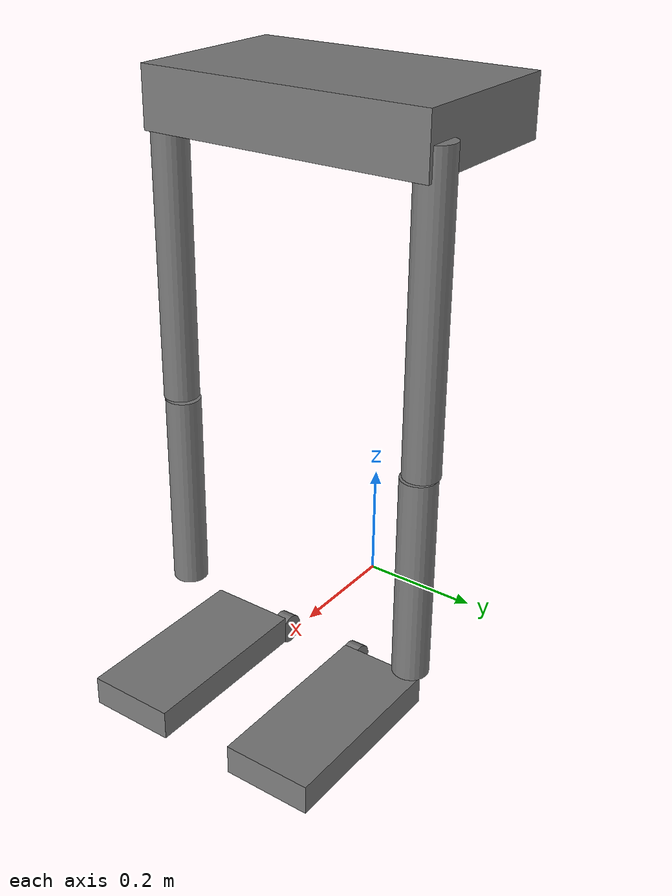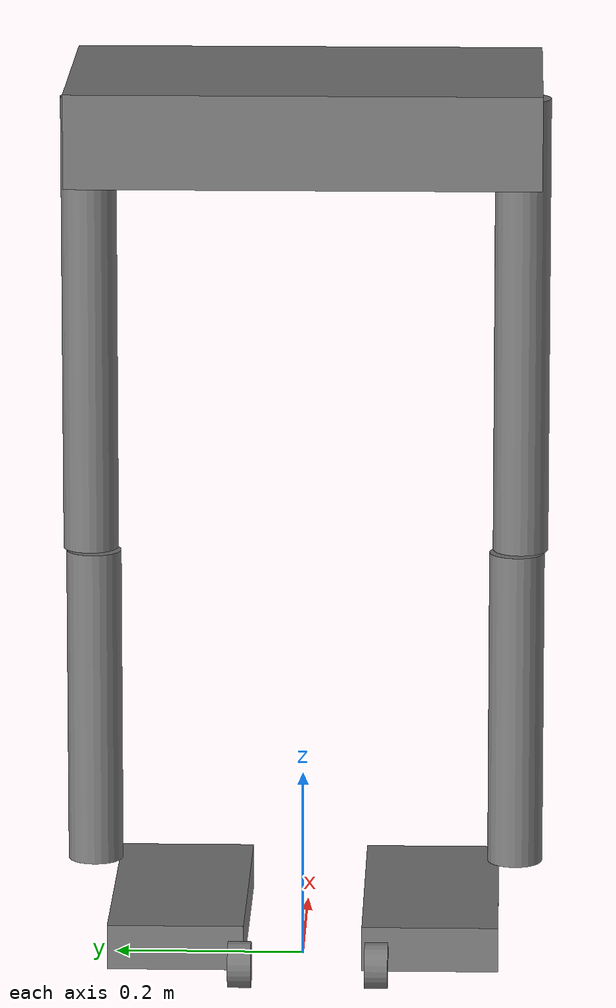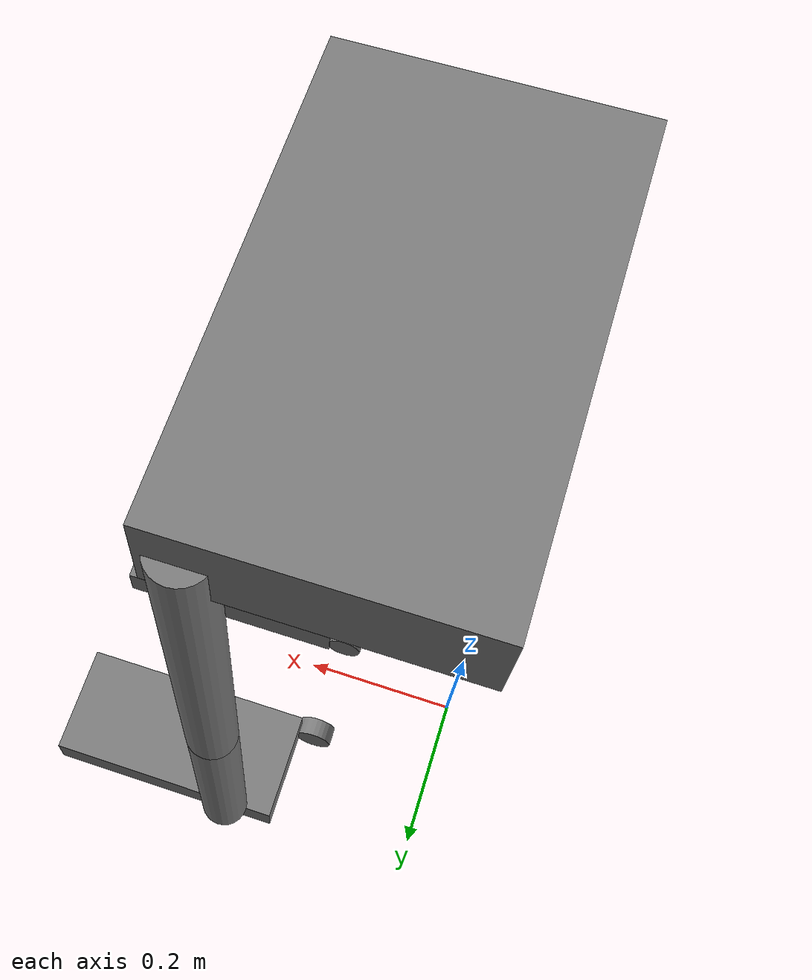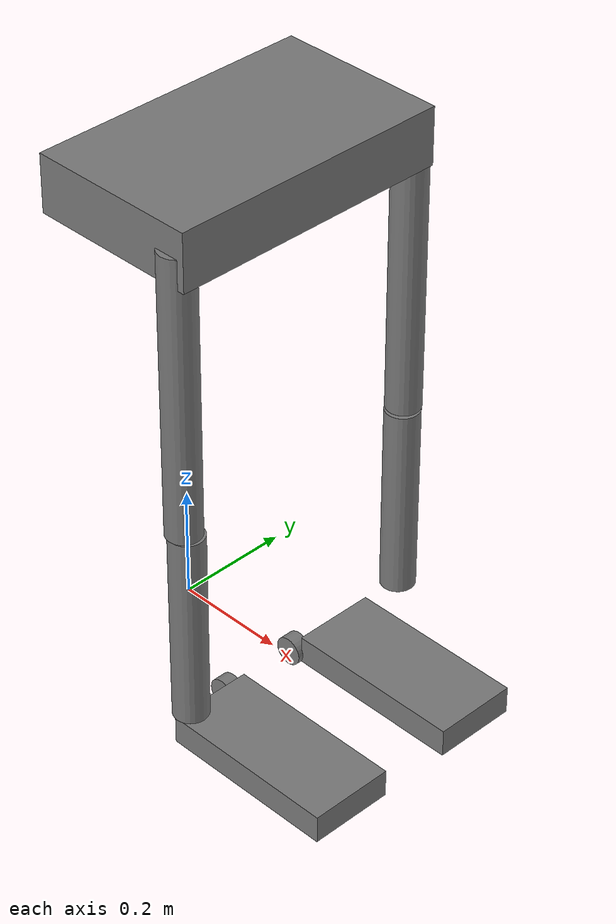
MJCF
<mujoco model="njit_exo">
  <compiler angle="radian" inertiafromgeom="auto"/>

  <option iterations="3" ls_iterations="5" timestep="0.002" integrator="Euler">
    <flag eulerdamp="disable"/>
  </option>

  <default>
    <default class="exo">
      <geom condim="1" contype="0" conaffinity="0"/>
      <site size="0.01" rgba="1 0 0 1" group="4"/>
      <joint damping="1.5"/>
      <position inheritrange="1.0" kp="35"/>
      <default class="hip">
        <joint actuatorfrcrange="-100 100" range="-1.309 1.309" armature="0.01" frictionloss="0.3"/>
      </default>
      <default class="knee">
        <joint actuatorfrcrange="-100 100" range="-2.094 0.0" armature="0.01" frictionloss="0.8"/>
      </default>
      <default class="ankle_pitch">
        <joint actuatorfrcrange="-100 100" range="-0.6981 0.2618" armature="0.01" frictionloss="0.5"/>
      </default>
      <default class="ankle_roll">
        <joint actuatorfrcrange="-100 100" range="-0.2618 0.2618" armature="0.01" frictionloss="0.5"/>
      </default>
      <default class="visual">
        <geom density="0" group="2" rgba="0.478431 0.478431 0.478431 1" contype="0" conaffinity="0"/>
      </default>
      <default class="collision">
        <geom group="3" contype="1" conaffinity="1"/>
      </default>
    </default>
  </default>

  <asset>
    <material name="exo_material" rgba="0.478431 0.478431 0.478431 1"/>
  </asset>

  <worldbody>
    <light name="spotlight" mode="targetbodycom" target="exo_pelvis" pos="3 0 4"/>

    <body name="exo_pelvis" childclass="exo" pos="0 0 0.9" quat="0.707107 0.707107 0 0">
      <freejoint/>
      <site name="imu"/>
      <camera name="front" pos="1.5 -0.5 0.5" xyaxes="0.342 0.940 0.000 -0.321 0.117 0.940" mode="trackcom"/>
      <camera name="track" pos="1.0 -1.5 0.3" xyaxes="0.814 0.580 0.000 -0.140 0.196 0.971" mode="trackcom"/>

      <inertial pos="0.164969 -0.016465 -0.00031201" quat="1 0 0 0" mass="3.40529"
        diaginertia="0.108005 0.140273 0.0409718"/>

      <geom class="visual" type="box" size="0.15 0.05 0.25" pos="0.134969 -0.016465 -0.00031201"/>

      <!-- Battery -->
      <body name="Battery" pos="0 0 0">
        <inertial pos="-0.0292753 0.0823604 -0.00041407" quat="1 0 0 0" mass="2.2"
          diaginertia="0.00909547 0.00798838 0.00423978"/>
      </body>

      <!-- Right Leg -->
      <body name="r_exo_femur" pos="0.25 -0.06 0.21">
        <inertial pos="-0.00012287 -0.205637 0.0391034" quat="1 0 0 0" mass="2.77725"
          diaginertia="0.0378701 0.00419727 0.0353309"/>
        <joint name="r_hip" class="hip" axis="0 0 1"/>
        <geom class="visual" type="cylinder" size="0.03 0.25" pos="-0.00012287 -0.205637 0.0201034" quat="0.707107 0.707107 0 0"/>

        <body name="r_exo_tibia" pos="0 -0.41 0">
          <inertial pos="0.00130324 -0.0640757 0.0163233" quat="1 0 0 0" mass="0.60426"
            diaginertia="0.00549709 0.00033891 0.00532813"/>
          <joint name="r_knee" class="knee" axis="0 0 1"/>
          <geom class="visual" type="cylinder" size="0.03 0.175" pos="0.00130324 -0.2240757 0.0163233" quat="0.707107 0.707107 0 0"/>

          <body name="r_shank_support" pos="0 -0.25 0">
            <inertial pos="-0.0220563 -0.0501763 -0.0332489" quat="1 0 0 0" mass="0.24824"
              diaginertia="0.0009242 0.00070211 0.00054663"/>

            <body name="r_ankle_coupling" pos="0 -0.129 0">
              <inertial pos="0.0270888 -0.0211255 -0.0183098" quat="1 0 0 0" mass="0.194678"
                diaginertia="0.00020434 0.00086131 0.00083139"/>
              <joint name="r_ankle_pitch" class="ankle_pitch" axis="0 0 1"/>
              <geom class="visual" type="cylinder" size="0.0254 0.0127" pos="-0.0784998 -0.1185 -0.135"/>

              <body name="r_foot" pos="0.11 0.001 -0.0699999" quat="0.958225 0 0 0.286109">
                <inertial pos="-0.0647188 -0.0863198 0.00643328" quat="1 0 0 0" mass="1.39879"
                  diaginertia="0.00411567 0.0161809 0.0165848"/>
                <joint name="r_ankle_roll" class="ankle_roll" axis="1 0 0"/>
                <geom class="visual" type="box" size="0.16 0.025 0.075" pos="-0.0647188 -0.0863198 -0.00643328" quat="0.958225 0 0 -0.286109"/>

                <!-- Ground contact geometry -->
                <body name="r_foot_ground" pos="0 -0.135 0" quat="0.958225 0 0 -0.286109">
                  <inertial pos="0 0 0" quat="1 0 0 0" mass="1e-06" diaginertia="1e-06 1e-06 1e-06"/>
                  <geom name="r_foot_contact" class="collision" type="box" size="0.16 0.02 0.07" pos="-0.08 0.02 0.00"/>
                  <site name="r_foot" type="box" size="0.16 0.02 0.07" pos="-0.08 0.02 0.00"/>
                </body>
              </body>
            </body>
          </body>
        </body>
      </body>

      <!-- Left Leg -->
      <body name="l_exo_femur" pos="0.25 -0.06 -0.21">
        <inertial pos="-0.00012287 -0.205637 -0.0391034" quat="1 0 0 0" mass="2.77725"
          diaginertia="0.0378701 0.00419727 0.0353309"/>
        <joint name="l_hip" class="hip" axis="0 0 1"/>
        <geom class="visual" type="cylinder" size="0.03 0.25" pos="-0.00012287 -0.205637 -0.0291034" quat="0.707107 0.707107 0 0"/>

        <body name="l_exo_tibia" pos="0 -0.41 0">
          <inertial pos="0.00130324 -0.0640757 -0.0163233" quat="1 0 0 0" mass="0.60426"
            diaginertia="0.00549709 0.00033891 0.00532813"/>
          <joint name="l_knee" class="knee" axis="0 0 1"/>
          <geom class="visual" type="cylinder" size="0.03 0.175" pos="0.00130324 -0.2240757 -0.0263233" quat="0.707107 0.707107 0 0"/>

          <body name="l_shank_support" pos="0 -0.25 0">
            <inertial pos="-0.0220563 -0.0501763 0.0332489" quat="1 0 0 0" mass="0.24824"
              diaginertia="0.0009242 0.00070211 0.00054663"/>

            <body name="l_ankle_coupling" pos="0 -0.129 0">
              <inertial pos="0.0270888 -0.0211255 0.0183098" quat="1 0 0 0" mass="0.194678"
                diaginertia="0.00020434 0.00086131 0.00083139"/>
              <joint name="l_ankle_pitch" class="ankle_pitch" axis="0 0 1"/>
              <geom class="visual" type="cylinder" size="0.0254 0.0127" pos="-0.0784998 -0.1185 0.135"/>

              <body name="l_foot" pos="0.11 0.001 0.0699999" quat="0.958225 0 0 0.286109">
                <inertial pos="-0.0647188 -0.0863198 -0.00643328" quat="1 0 0 0" mass="1.39879"
                  diaginertia="0.00411567 0.0161809 0.0165848"/>
                <joint name="l_ankle_roll" class="ankle_roll" axis="-1 0 0"/>
                <geom class="visual" type="box" size="0.16 0.025 0.075" pos="-0.0647188 -0.0863198 -0.00643328" quat="0.958225 0 0 -0.286109"/>

                <!-- Ground contact geometry -->
                <body name="l_foot_ground" pos="0 -0.135 0" quat="0.958225 0 0 -0.286109">
                  <inertial pos="0 0 0" quat="1 0 0 0" mass="1e-06" diaginertia="1e-06 1e-06 1e-06"/>
                  <geom name="l_foot_contact" class="collision" type="box" size="0.16 0.02 0.07" pos="-0.08 0.02 0.00"/>
                  <site name="l_foot" type="box" size="0.16 0.02 0.07" pos="-0.08 0.02 0.00"/>
                </body>
              </body>
            </body>
          </body>
        </body>
      </body>

    </body>
  </worldbody>

  <actuator>
    <position class="hip" name="r_hip" joint="r_hip"/>
    <position class="knee" name="r_knee" joint="r_knee"/>
    <position class="ankle_pitch" name="r_ankle_pitch" joint="r_ankle_pitch"/>
    <position class="ankle_roll" name="r_ankle_roll" joint="r_ankle_roll"/>

    <position class="hip" name="l_hip" joint="l_hip"/>
    <position class="knee" name="l_knee" joint="l_knee"/>
    <position class="ankle_pitch" name="l_ankle_pitch" joint="l_ankle_pitch"/>
    <position class="ankle_roll" name="l_ankle_roll" joint="l_ankle_roll"/>
  </actuator>

  <sensor>
    <gyro site="imu" name="gyro"/>
    <velocimeter site="imu" name="local_linvel"/>
    <accelerometer site="imu" name="accelerometer"/>
    <framezaxis objtype="site" objname="imu" name="upvector"/>
    <framexaxis objtype="site" objname="imu" name="forwardvector"/>
    <framelinvel objtype="site" objname="imu" name="global_linvel"/>
    <frameangvel objtype="site" objname="imu" name="global_angvel"/>
    <framepos objtype="site" objname="imu" name="position"/>
    <framequat objtype="site" objname="imu" name="orientation"/>
    <framelinvel objtype="site" objname="l_foot" name="l_foot_global_linvel"/>
    <framelinvel objtype="site" objname="r_foot" name="r_foot_global_linvel"/>
    <framexaxis objtype="site" objname="l_foot" name="l_foot_upvector"/>
    <framexaxis objtype="site" objname="r_foot" name="r_foot_upvector"/>
    <framepos objtype="site" objname="l_foot" name="l_foot_pos"/>
    <framepos objtype="site" objname="r_foot" name="r_foot_pos"/>
  </sensor>
</mujoco>
